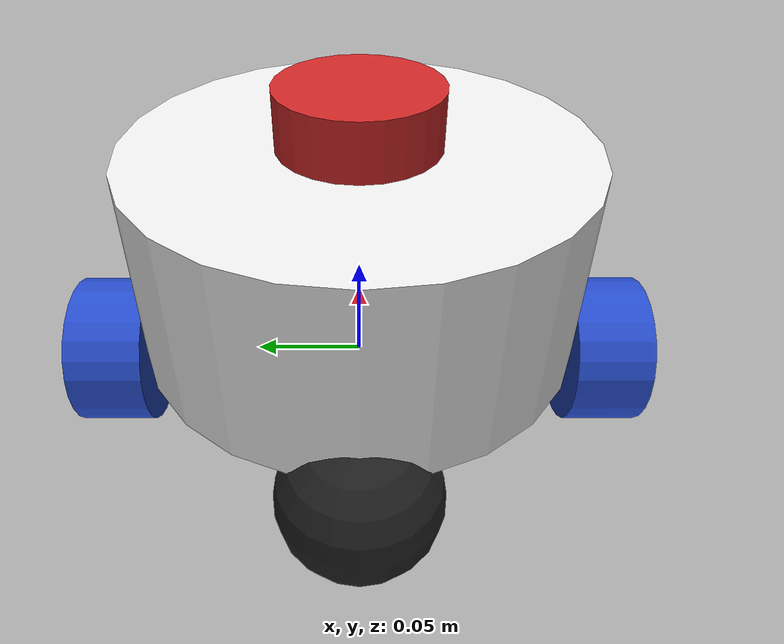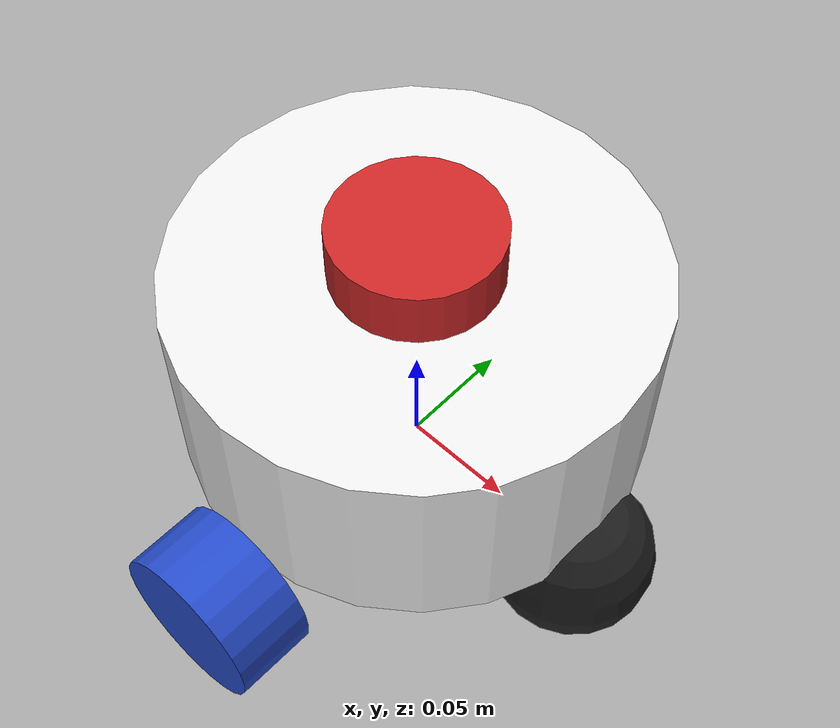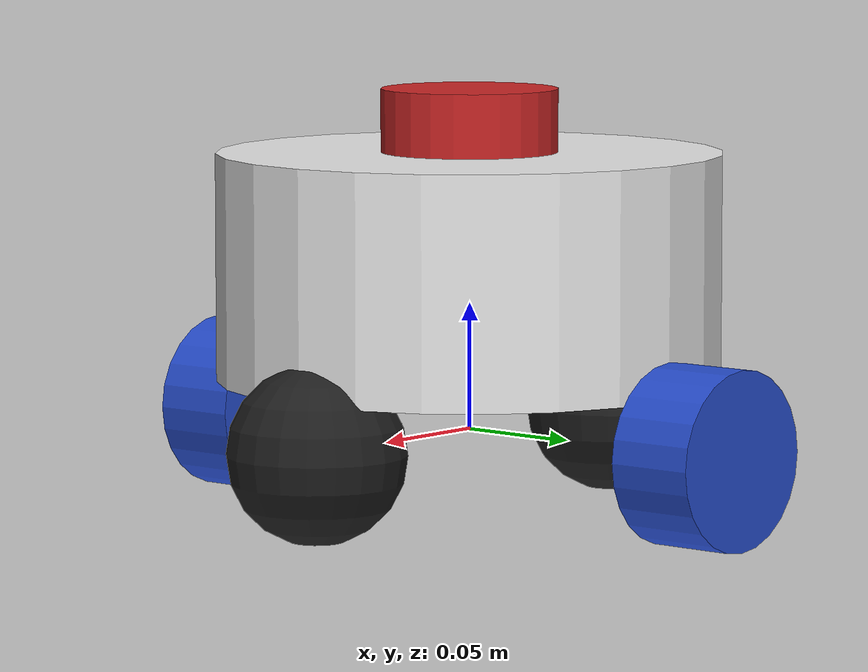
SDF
<sdf version='1.7'>
  <model name='robot'>
    <link name='base_link'>
      <inertial>
        <pose>0 0 0.054259 0 -0 0</pose>
        <mass>0.81</mass>
        <inertia>
          <ixx>0.00270501</ixx>
          <ixy>0</ixy>
          <ixz>0</ixz>
          <iyy>0.00432501</iyy>
          <iyz>0</iyz>
          <izz>0.00428925</izz>
        </inertia>
      </inertial>
      <collision name='base_link_fixed_joint_lump__chassis_collision'>
        <pose>0 0 0.065 0 -0 0</pose>
        <geometry>
          <cylinder>
            <length>0.09</length>
            <radius>0.1</radius>
          </cylinder>
        </geometry>
        <surface>
          <contact>
            <ode/>
          </contact>
          <friction>
            <ode/>
          </friction>
        </surface>
      </collision>
      <collision name='base_link_fixed_joint_lump__caster_wheel_collision_1'>
        <pose>0.09 0 0 0 -0 0</pose>
        <geometry>
          <sphere>
            <radius>0.035</radius>
          </sphere>
        </geometry>
        <surface>
          <contact>
            <ode/>
          </contact>
          <friction>
            <ode>
              <mu>0.001</mu>
              <mu2>0.001</mu2>
            </ode>
          </friction>
        </surface>
      </collision>
      <collision name='base_link_fixed_joint_lump__caster_wheel2_collision_2'>
        <pose>-0.09 0 0 0 -0 0</pose>
        <geometry>
          <sphere>
            <radius>0.035</radius>
          </sphere>
        </geometry>
        <surface>
          <contact>
            <ode/>
          </contact>
          <friction>
            <ode>
              <mu>0.001</mu>
              <mu2>0.001</mu2>
            </ode>
          </friction>
        </surface>
      </collision>
      <collision name='base_link_fixed_joint_lump__laser_frame_collision_3'>
        <pose>0 0 0.11 0 -0 0</pose>
        <geometry>
          <cylinder>
            <length>0.05</length>
            <radius>0.035</radius>
          </cylinder>
        </geometry>
        <surface>
          <contact>
            <ode/>
          </contact>
          <friction>
            <ode/>
          </friction>
        </surface>
      </collision>
      <collision name='base_link_fixed_joint_lump__imu_link_collision_4'>
        <pose>0 0 0.09 0 -0 0</pose>
        <geometry>
          <box>
            <size>0.02 0.02 0.02</size>
          </box>
        </geometry>
        <surface>
          <contact>
            <ode/>
          </contact>
          <friction>
            <ode/>
          </friction>
        </surface>
      </collision>
      <visual name='base_link_fixed_joint_lump__chassis_visual'>
        <pose>0 0 0.065 0 -0 0</pose>
        <geometry>
          <cylinder>
            <length>0.09</length>
            <radius>0.1</radius>
          </cylinder>
        </geometry>
        <material>
          <script>
            <name>Gazebo/White</name>
            <uri>file://media/materials/scripts/gazebo.material</uri>
          </script>
        </material>
      </visual>
      <visual name='base_link_fixed_joint_lump__caster_wheel_visual_1'>
        <pose>0.09 0 0 0 -0 0</pose>
        <geometry>
          <sphere>
            <radius>0.035</radius>
          </sphere>
        </geometry>
        <material>
          <script>
            <name>Gazebo/Black</name>
            <uri>file://media/materials/scripts/gazebo.material</uri>
          </script>
        </material>
      </visual>
      <visual name='base_link_fixed_joint_lump__caster_wheel2_visual_2'>
        <pose>-0.09 0 0 0 -0 0</pose>
        <geometry>
          <sphere>
            <radius>0.035</radius>
          </sphere>
        </geometry>
        <material>
          <script>
            <name>Gazebo/Black</name>
            <uri>file://media/materials/scripts/gazebo.material</uri>
          </script>
        </material>
      </visual>
      <visual name='base_link_fixed_joint_lump__laser_frame_visual_3'>
        <pose>0 0 0.11 0 -0 0</pose>
        <geometry>
          <cylinder>
            <length>0.05</length>
            <radius>0.035</radius>
          </cylinder>
        </geometry>
        <material>
          <script>
            <name>Gazebo/Red</name>
            <uri>file://media/materials/scripts/gazebo.material</uri>
          </script>
        </material>
      </visual>
      <visual name='base_link_fixed_joint_lump__imu_link_visual_4'>
        <pose>0 0 0.09 0 -0 0</pose>
        <geometry>
          <box>
            <size>0.02 0.02 0.02</size>
          </box>
        </geometry>
      </visual>
      <sensor name='laser' type='gpu_lidar'>
        <always_on>1</always_on>
        <visualize>1</visualize>
        <pose>0 0 0.11 0 -0 0</pose>
        <update_rate>10</update_rate>
        <topic>scan</topic>
        <lidar>
          <scan>
            <horizontal>
              <samples>360</samples>
              <resolution>1.00000</resolution>
              <min_angle>-3.14</min_angle>
              <max_angle>3.14</max_angle>
            </horizontal>
          </scan>
          <range>
            <min>0.3</min>
            <max>6.0</max>
            <resolution>0.015</resolution>
          </range>
          <noise>
            <type>gaussian</type>
            <mean>0.0</mean>
            <stddev>0.01</stddev>
          </noise>
        </lidar>
      </sensor>
      <gravity>1</gravity>
      <sensor name='imu_sensor' type='imu'>
        <always_on>1</always_on>
        <update_rate>200</update_rate>
        <visualize>1</visualize>
        <topic>imu</topic>
        <pose>0 0 0.045 0 0 0</pose>
        <imu>
          <angular_velocity>
            <x>
              <noise type="gaussian">
                <mean>0.0</mean>
                <stddev>2e-4</stddev>
              </noise>
            </x>
            <y>
              <noise type="gaussian">
                <mean>0.0</mean>
                <stddev>2e-4</stddev>
              </noise>
            </y>
            <z>
              <noise type="gaussian">
                <mean>0.0</mean>
                <stddev>2e-4</stddev>
              </noise>
            </z>
          </angular_velocity>
          <linear_acceleration>
            <x>
              <noise type="gaussian">
                <mean>0.0</mean>
                <stddev>1.7e-2</stddev>
              </noise>
            </x>
            <y>
              <noise type="gaussian">
                <mean>0.0</mean>
                <stddev>1.7e-2</stddev>
              </noise>
            </y>
            <z>
              <noise type="gaussian">
                <mean>0.0</mean>
                <stddev>1.7e-2</stddev>
              </noise>
            </z>
          </linear_acceleration>
        </imu>
      </sensor>
    </link>
    <joint name='left_wheel_joint' type='revolute'>
      <pose relative_to='base_link'>0 0.1175 0 -1.5708 0 0</pose>
      <parent>base_link</parent>
      <child>left_wheel</child>
      <axis>
        <xyz>0 0 1</xyz>
        <limit>
          <lower>-1e+16</lower>
          <upper>1e+16</upper>
        </limit>
        <dynamics>
          <spring_reference>0</spring_reference>
          <spring_stiffness>0</spring_stiffness>
        </dynamics>
      </axis>
    </joint>
    <link name='left_wheel'>
      <pose relative_to='left_wheel_joint'>0 0 0 0 -0 0</pose>
      <inertial>
        <pose>0 0 0 0 -0 0</pose>
        <mass>0.1</mass>
        <inertia>
          <ixx>4.08333e-05</ixx>
          <ixy>0</ixy>
          <ixz>0</ixz>
          <iyy>4.08333e-05</iyy>
          <iyz>0</iyz>
          <izz>6.125e-05</izz>
        </inertia>
      </inertial>
      <collision name='left_wheel_collision'>
        <pose>0 0 0 0 -0 0</pose>
        <geometry>
          <sphere>
            <radius>0.035</radius>
          </sphere>
        </geometry>
        <surface>
          <contact>
            <ode/>
          </contact>
          <friction>
            <ode/>
          </friction>
        </surface>
      </collision>
      <visual name='left_wheel_visual'>
        <pose>0 0 0 0 -0 0</pose>
        <geometry>
          <cylinder>
            <length>0.035</length>
            <radius>0.035</radius>
          </cylinder>
        </geometry>
        <material>
          <script>
            <name>Gazebo/Blue</name>
            <uri>file://media/materials/scripts/gazebo.material</uri>
          </script>
        </material>
      </visual>
    </link>
    <joint name='right_wheel_joint' type='revolute'>
      <pose relative_to='base_link'>0 -0.1175 0 1.5708 -0 0</pose>
      <parent>base_link</parent>
      <child>right_wheel</child>
      <axis>
        <xyz>0 0 -1</xyz>
        <limit>
          <lower>-1e+16</lower>
          <upper>1e+16</upper>
        </limit>
        <dynamics>
          <spring_reference>0</spring_reference>
          <spring_stiffness>0</spring_stiffness>
        </dynamics>
      </axis>
    </joint>
    <link name='right_wheel'>
      <pose relative_to='right_wheel_joint'>0 0 0 0 -0 0</pose>
      <inertial>
        <pose>0 0 0 0 -0 0</pose>
        <mass>0.1</mass>
        <inertia>
          <ixx>4.08333e-05</ixx>
          <ixy>0</ixy>
          <ixz>0</ixz>
          <iyy>4.08333e-05</iyy>
          <iyz>0</iyz>
          <izz>6.125e-05</izz>
        </inertia>
      </inertial>
      <collision name='right_wheel_collision'>
        <pose>0 0 0 0 -0 0</pose>
        <geometry>
          <sphere>
            <radius>0.035</radius>
          </sphere>
        </geometry>
        <surface>
          <contact>
            <ode/>
          </contact>
          <friction>
            <ode/>
          </friction>
        </surface>
      </collision>
      <visual name='right_wheel_visual'>
        <pose>0 0 0 0 -0 0</pose>
        <geometry>
          <cylinder>
            <length>0.035</length>
            <radius>0.035</radius>
          </cylinder>
        </geometry>
        <material>
          <script>
            <name>Gazebo/Blue</name>
            <uri>file://media/materials/scripts/gazebo.material</uri>
          </script>
        </material>
      </visual>
    </link>
    <static>0</static>
    <plugin name='gz_ros2_control::GazeboSimROS2ControlPlugin' filename='libgz_ros2_control.so'>
      <robot_param>robot_description</robot_param>
      <robot_param_node>robot_state_publisher</robot_param_node>
      <parameters>/home/pontus/ros2_ws/install/diffbot/share/diffbot/config/ros2_controller.yaml</parameters>
      <parameters>/home/pontus/ros2_ws/install/diffbot/share/diffbot/config/gaz_ros2_ctl_use_sim.yaml</parameters>
    </plugin>
  </model>
</sdf>
